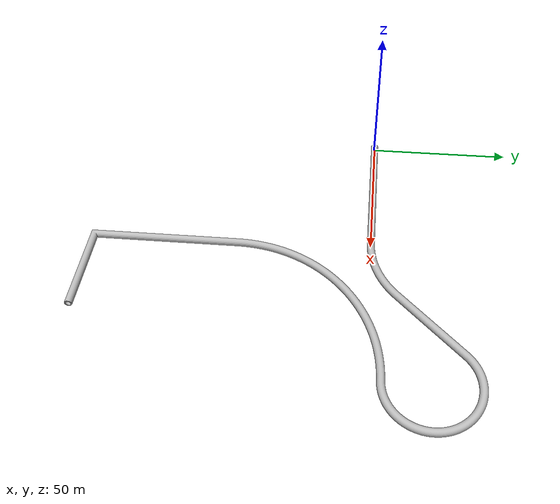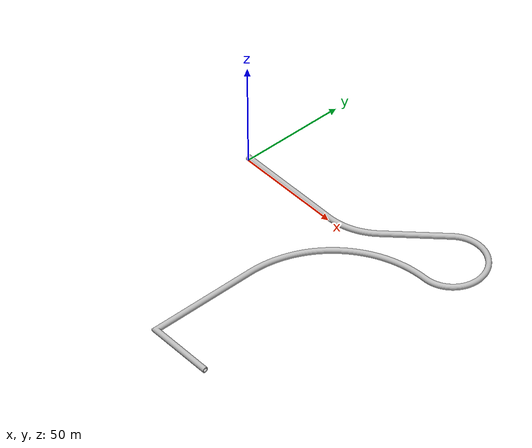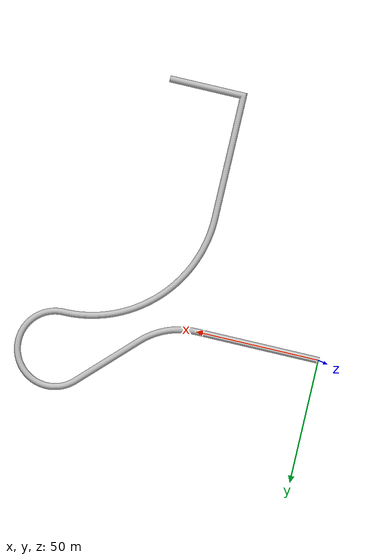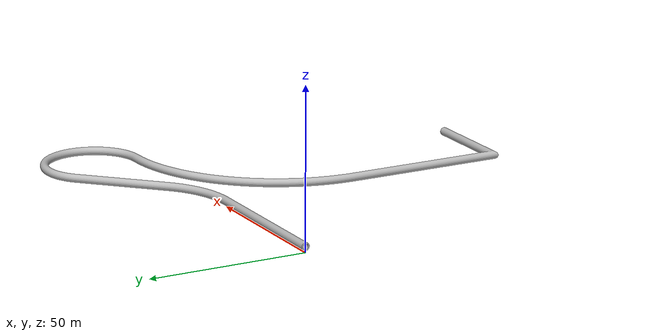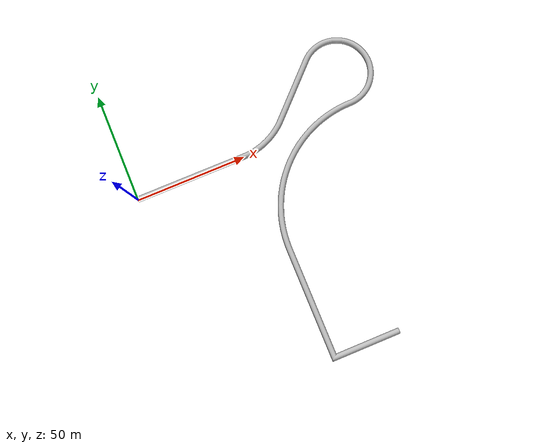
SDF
<?xml version='1.0'?>
<sdf version="1.6">
    <model name="sewage_pipe_2">
      <pose>0 0 1.8 0 0 0</pose>
      <static>true</static>
      <link name="sewage_pipe_link">
        <collision name="collision_pipe">
          <geometry>
            <mesh>
                <uri>model://sewage_pipe_2/meshes/sewage_pipe_2.stl</uri>
            </mesh>
          </geometry>
          <surface>
            <friction>
              <ode>
                <mu>100</mu>
                <mu2>50</mu2>
              </ode>
            </friction>
          </surface>
        </collision>
        <visual name="visual_pipe">
          <geometry>
            <mesh>
                <uri>model://sewage_pipe_2/meshes/sewage_pipe_2.dae</uri>
            </mesh>
          </geometry>
          <material>
          <script>
            <uri>model://sewage_pipe_2/materials/scripts</uri>
            <uri>model://sewage_pipe_2/materials/textures</uri>
            <name>pipe/concrete</name>
          </script>
        </material>
        </visual>
      </link>
    </model>
</sdf>
